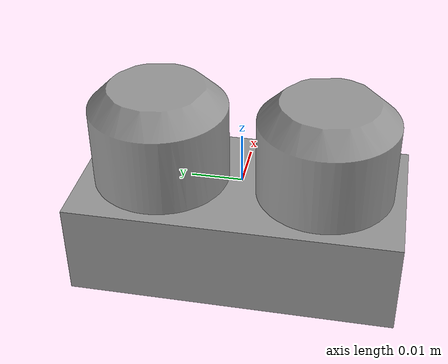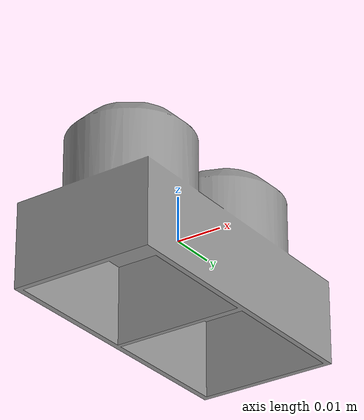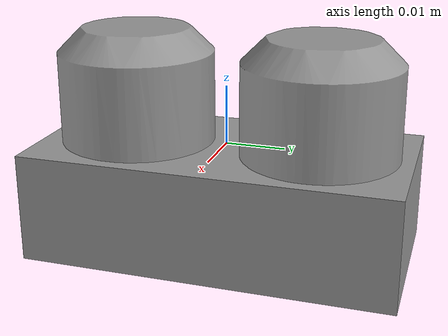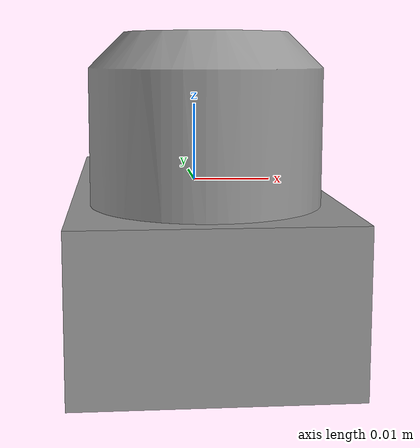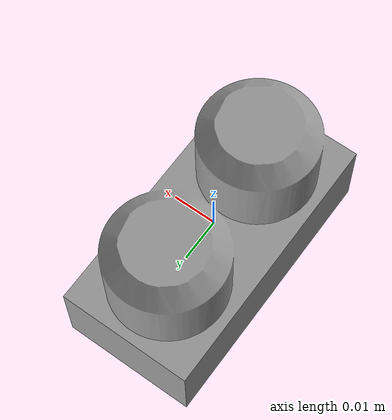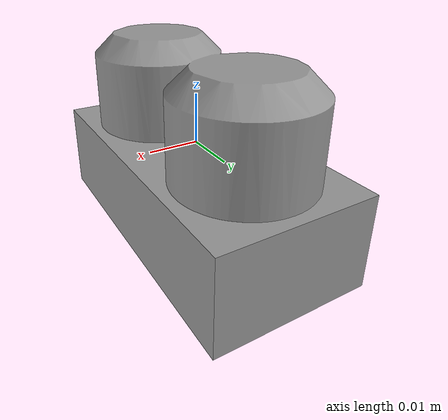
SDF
<?xml version="1.0"?>
<sdf version="1.4">
    <model name="lego_X1-Y2-Z1">
        <link name="link">
            <pose>-0.0 -0.0 -0.0 0 0 0</pose>
            <inertial>
                <pose>-1.82292e-06 -1.29533e-05 7.5842e-05 0 0 0</pose>
                <mass>0.00996487</mass>
                <inertia>
                    <ixx>5.10576e-06</ixx>
                    <ixy>-2.19745e-10</ixy>
                    <ixz>5.98298e-10</ixz>
                    <iyy>2.36483e-06</iyy>
                    <iyz>1.68164e-09</iyz>
                    <izz>5.02663e-06</izz>
                </inertia>
            </inertial>
            <collision name="collision">
                <geometry>
                    <mesh>
                        <scale>1 1 1</scale>
                        <uri>model://lego_X1-Y2-Z1/meshes/X1-Y2-Z1.stl</uri>
                    </mesh>
                </geometry>

                <max_contacts>10</max_contacts>
                <surface>
                    <contact>
                        <ode>
                            <mu>0.1</mu>
                            <mu2>0.1</mu2>
                            <max_vel>0.01</max_vel>
                            <min_depth>0.0</min_depth>
                        </ode>
                    </contact>
                    <bounce>
                        <restitution_coefficient>0</restitution_coefficient>
                        <threshold>1e+06</threshold>
                    </bounce>
                    <friction>
                        <torsional>
                            <ode/>
                        </torsional>
                        <ode/>
                    </friction>
                </surface>
            </collision>
            <visual name="visual">
                <geometry>
                    <mesh>
                        <scale>1 1 1</scale>
                        <uri>model://lego_X1-Y2-Z1/meshes/X1-Y2-Z1.stl</uri>
                    </mesh>
                </geometry>
                <material>
                    <script>
                    <uri>file://media/materials/scripts/gazebo.material</uri>
                    <name>Gazebo/Grey</name>
                    </script>
                    <shader type="vertex">
                        <normal_map>__default__</normal_map>
                    </shader>
                    <ambient>0.3 0.3 0.3 1</ambient>
                    <diffuse>0.7 0.7 0.7 1</diffuse>
                    <specular>0.01 0.01 0.01 1</specular>
                    <emissive>0 0 0 1</emissive>
                </material>
            </visual>
        </link>
    </model>
</sdf>
